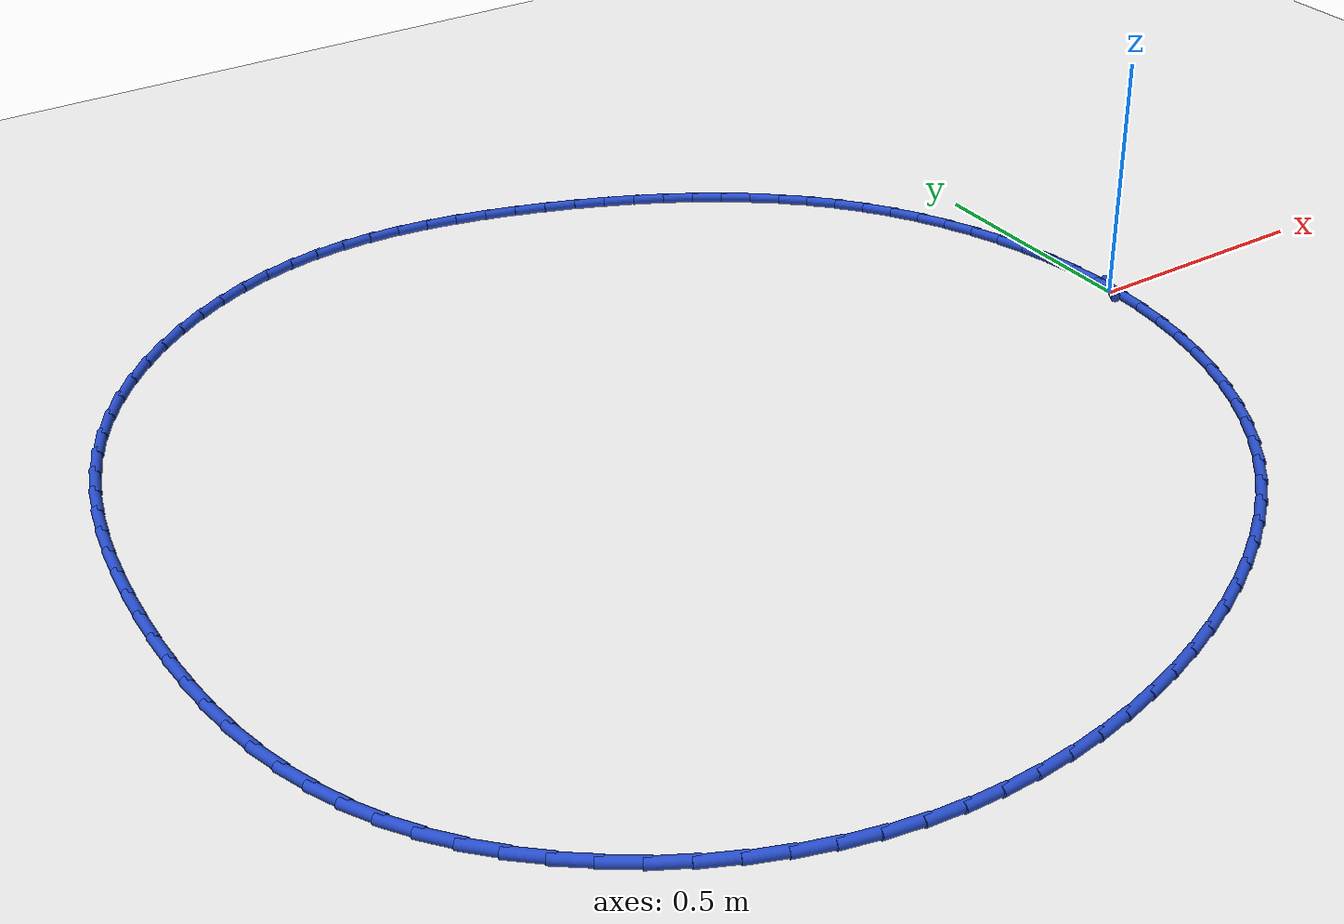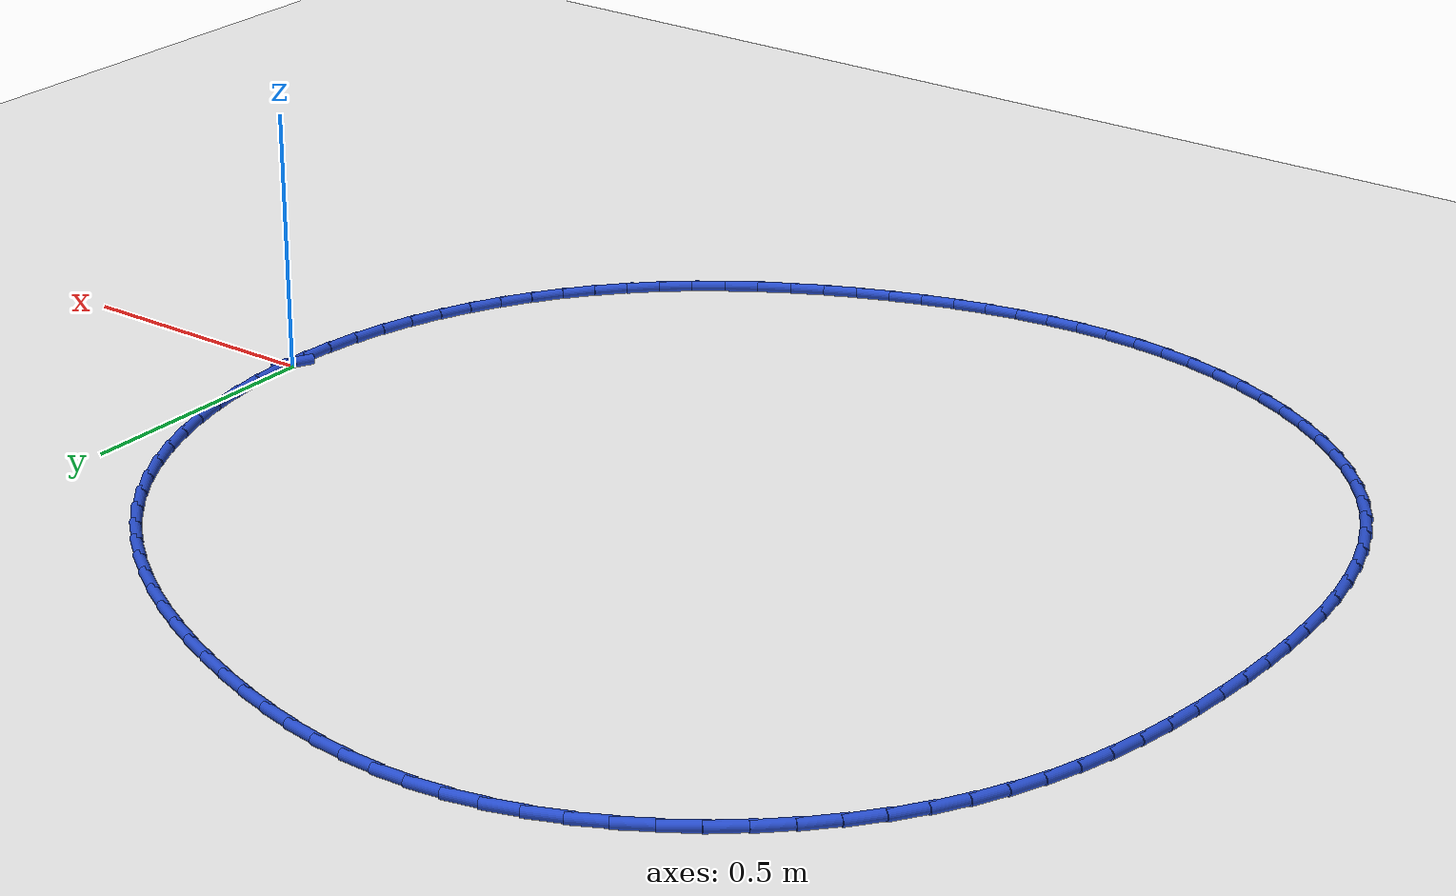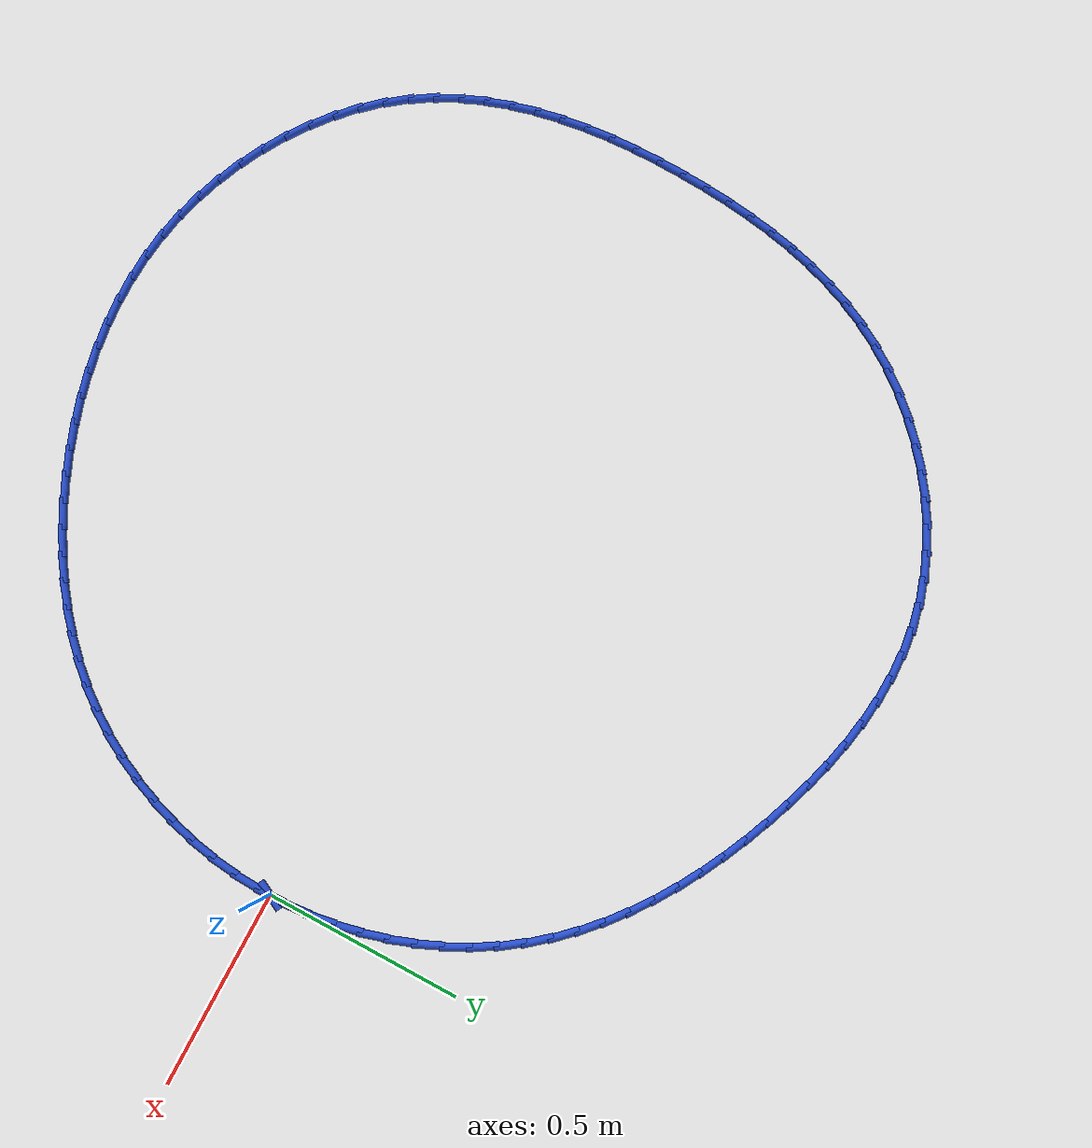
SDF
<sdf version="1.6">
 <world name="default">
  <light name="sun" type="directional">
   <pose>0 0 10 0 -0 0</pose>
   <diffuse>0.8 0.8 0.8 1</diffuse>
   <specular>0.2 0.2 0.2 1</specular>
   <attenuation>
    <range>1000</range>
    <constant>0.9</constant>
    <linear>0.01</linear>
    <quadratic>0.001</quadratic>
   </attenuation>
   <direction>-0.5 0.1 -0.9</direction>
  </light>
  <model name="ground_plane">
   <static>1</static>
   <link name="link">
    <collision name="collision">
     <geometry><plane><normal>0 0 1</normal><size>100 100</size></plane></geometry>
     <surface><friction><ode><mu>100</mu><mu2>50</mu2></ode></friction></surface>
    </collision>
    <visual name="visual">
     <cast_shadows>0</cast_shadows>
     <geometry><plane><normal>0 0 1</normal><size>100 100</size></plane></geometry>
     <material>
      <script><uri>file://media/materials/scripts/gazebo.material</uri><name>Gazebo/WhiteGlow</name></script>
     </material>
    </visual>
   </link>
  </model>
  <gravity>0 0 -9.8</gravity>
  <magnetic_field>6e-06 2.3e-05 -4.2e-05</magnetic_field>
  <atmosphere type="adiabatic"/>
  <physics name="default_physics" default="0" type="ode">
   <max_step_size>0.001</max_step_size>
   <real_time_factor>1</real_time_factor>
   <real_time_update_rate>1000</real_time_update_rate>
  </physics>
  <scene><ambient>0.4 0.4 0.4 1</ambient><background>0.7 0.7 0.7 1</background><shadows>1</shadows></scene>
  <spherical_coordinates>
   <surface_model>EARTH_WGS84</surface_model>
   <latitude_deg>0</latitude_deg>
   <longitude_deg>0</longitude_deg>
   <elevation>0</elevation>
   <heading_deg>0</heading_deg>
  </spherical_coordinates>
  <model name="line">
   <link name="link_0">
    <pose>5.204170427930421e-17 1.3877787807814457e-17 0.01 0 1.57 -1.5369575395635646</pose>
    <collision name="collision">
     <geometry><cylinder><radius>0.01</radius><length>0.08</length></cylinder></geometry>
    </collision>
    <visual name="visual">
     <material>
      <script><name>Gazebo/Blue</name><uri>file://media/materials/scripts/gazebo.material</uri></script>
     </material>
     <geometry><cylinder><radius>0.01</radius><length>0.08</length></cylinder></geometry>
    </visual>
   </link>
   <link name="link_1">
    <pose>-0.0022400724827493705 0.06617309875016318 0.01 0 1.57 -1.4712965018616015</pose>
    <collision name="collision">
     <geometry><cylinder><radius>0.01</radius><length>0.08</length></cylinder></geometry>
    </collision>
    <visual name="visual">
     <material>
      <script><name>Gazebo/Blue</name><uri>file://media/materials/scripts/gazebo.material</uri></script>
     </material>
     <geometry><cylinder><radius>0.01</radius><length>0.08</length></cylinder></geometry>
    </visual>
   </link>
   <link name="link_2">
    <pose>-0.008816758125148778 0.1320522877268923 0.01 0 1.57 -1.4063200440702284</pose>
    <collision name="collision">
     <geometry><cylinder><radius>0.01</radius><length>0.08</length></cylinder></geometry>
    </collision>
    <visual name="visual">
     <material>
      <script><name>Gazebo/Blue</name><uri>file://media/materials/scripts/gazebo.material</uri></script>
     </material>
     <geometry><cylinder><radius>0.01</radius><length>0.08</length></cylinder></geometry>
    </visual>
   </link>
   <link name="link_3">
    <pose>-0.019648317991479605 0.19731221261074494 0.01 0 1.57 -1.3415969769158416</pose>
    <collision name="collision">
     <geometry><cylinder><radius>0.01</radius><length>0.08</length></cylinder></geometry>
    </collision>
    <visual name="visual">
     <material>
      <script><name>Gazebo/Blue</name><uri>file://media/materials/scripts/gazebo.material</uri></script>
     </material>
     <geometry><cylinder><radius>0.01</radius><length>0.08</length></cylinder></geometry>
    </visual>
   </link>
   <link name="link_4">
    <pose>-0.034653013146023336 0.26162751908227927 0.01 0 1.57 -1.2766860509275353</pose>
    <collision name="collision">
     <geometry><cylinder><radius>0.01</radius><length>0.08</length></cylinder></geometry>
    </collision>
    <visual name="visual">
     <material>
      <script><name>Gazebo/Blue</name><uri>file://media/materials/scripts/gazebo.material</uri></script>
     </material>
     <geometry><cylinder><radius>0.01</radius><length>0.08</length></cylinder></geometry>
    </visual>
   </link>
   <link name="link_5">
    <pose>-0.053749104653061465 0.324672852822053 0.01 0 1.57 -1.2111414420504703</pose>
    <collision name="collision">
     <geometry><cylinder><radius>0.01</radius><length>0.08</length></cylinder></geometry>
    </collision>
    <visual name="visual">
     <material>
      <script><name>Gazebo/Blue</name><uri>file://media/materials/scripts/gazebo.material</uri></script>
     </material>
     <geometry><cylinder><radius>0.01</radius><length>0.08</length></cylinder></geometry>
    </visual>
   </link>
   <link name="link_6">
    <pose>-0.07685485357687541 0.3861228595106239 0.01 0 1.57 -1.1445185656957613</pose>
    <collision name="collision">
     <geometry><cylinder><radius>0.01</radius><length>0.08</length></cylinder></geometry>
    </collision>
    <visual name="visual">
     <material>
      <script><name>Gazebo/Blue</name><uri>file://media/materials/scripts/gazebo.material</uri></script>
     </material>
     <geometry><cylinder><radius>0.01</radius><length>0.08</length></cylinder></geometry>
    </visual>
   </link>
   <link name="link_7">
    <pose>-0.10388852098174672 0.4456521848285501 0.01 0 1.57 -1.0763814324998242</pose>
    <collision name="collision">
     <geometry><cylinder><radius>0.01</radius><length>0.08</length></cylinder></geometry>
    </collision>
    <visual name="visual">
     <material>
      <script><name>Gazebo/Blue</name><uri>file://media/materials/scripts/gazebo.material</uri></script>
     </material>
     <geometry><cylinder><radius>0.01</radius><length>0.08</length></cylinder></geometry>
    </visual>
   </link>
   <link name="link_8">
    <pose>-0.13476836793195676 0.5029354744563892 0.01 0 1.57 -1.0063128028804083</pose>
    <collision name="collision">
     <geometry><cylinder><radius>0.01</radius><length>0.08</length></cylinder></geometry>
    </collision>
    <visual name="visual">
     <material>
      <script><name>Gazebo/Blue</name><uri>file://media/materials/scripts/gazebo.material</uri></script>
     </material>
     <geometry><cylinder><radius>0.01</radius><length>0.08</length></cylinder></geometry>
    </visual>
   </link>
   <link name="link_9">
    <pose>-0.16941265549178702 0.5576473740746991 0.01 0 1.57 -0.9340053050203576</pose>
    <collision name="collision">
     <geometry><cylinder><radius>0.01</radius><length>0.08</length></cylinder></geometry>
    </collision>
    <visual name="visual">
     <material>
      <script><name>Gazebo/Blue</name><uri>file://media/materials/scripts/gazebo.material</uri></script>
     </material>
     <geometry><cylinder><radius>0.01</radius><length>0.08</length></cylinder></geometry>
    </visual>
   </link>
   <link name="link_10">
    <pose>-0.20773736302205653 0.6094677829932282 0.01 0 1.57 -0.861832837167358</pose>
    <collision name="collision">
     <geometry><cylinder><radius>0.01</radius><length>0.08</length></cylinder></geometry>
    </collision>
    <visual name="visual">
     <material>
      <script><name>Gazebo/Blue</name><uri>file://media/materials/scripts/gazebo.material</uri></script>
     </material>
     <geometry><cylinder><radius>0.01</radius><length>0.08</length></cylinder></geometry>
    </visual>
   </link>
   <link name="link_11">
    <pose>-0.24958184155715032 0.6582530374773349 0.01 0 1.57 -0.793208389301678</pose>
    <collision name="collision">
     <geometry><cylinder><radius>0.01</radius><length>0.08</length></cylinder></geometry>
    </collision>
    <visual name="visual">
     <material>
      <script><name>Gazebo/Blue</name><uri>file://media/materials/scripts/gazebo.material</uri></script>
     </material>
     <geometry><cylinder><radius>0.01</radius><length>0.08</length></cylinder></geometry>
    </visual>
   </link>
   <link name="link_12">
    <pose>-0.2946923695709845 0.7040737736470699 0.01 0 1.57 -0.728599602001141</pose>
    <collision name="collision">
     <geometry><cylinder><radius>0.01</radius><length>0.08</length></cylinder></geometry>
    </collision>
    <visual name="visual">
     <material>
      <script><name>Gazebo/Blue</name><uri>file://media/materials/scripts/gazebo.material</uri></script>
     </material>
     <geometry><cylinder><radius>0.01</radius><length>0.08</length></cylinder></geometry>
    </visual>
   </link>
   <link name="link_13">
    <pose>-0.34280961597097115 0.7470135436664904 0.01 0 1.57 -0.6681206396955378</pose>
    <collision name="collision">
     <geometry><cylinder><radius>0.01</radius><length>0.08</length></cylinder></geometry>
    </collision>
    <visual name="visual">
     <material>
      <script><name>Gazebo/Blue</name><uri>file://media/materials/scripts/gazebo.material</uri></script>
     </material>
     <geometry><cylinder><radius>0.01</radius><length>0.08</length></cylinder></geometry>
    </visual>
   </link>
   <link name="link_14">
    <pose>-0.3936742496645222 0.7871558996996534 0.01 0 1.57 -0.6117518418513347</pose>
    <collision name="collision">
     <geometry><cylinder><radius>0.01</radius><length>0.08</length></cylinder></geometry>
    </collision>
    <visual name="visual">
     <material>
      <script><name>Gazebo/Blue</name><uri>file://media/materials/scripts/gazebo.material</uri></script>
     </material>
     <geometry><cylinder><radius>0.01</radius><length>0.08</length></cylinder></geometry>
    </visual>
   </link>
   <link name="link_15">
    <pose>-0.4470269395590492 0.8245843939106154 0.01 0 1.57 -0.5593726238561654</pose>
    <collision name="collision">
     <geometry><cylinder><radius>0.01</radius><length>0.08</length></cylinder></geometry>
    </collision>
    <visual name="visual">
     <material>
      <script><name>Gazebo/Blue</name><uri>file://media/materials/scripts/gazebo.material</uri></script>
     </material>
     <geometry><cylinder><radius>0.01</radius><length>0.08</length></cylinder></geometry>
    </visual>
   </link>
   <link name="link_16">
    <pose>-0.5026083545619644 0.8593825784634331 0.01 0 1.57 -0.5107921642512886</pose>
    <collision name="collision">
     <geometry><cylinder><radius>0.01</radius><length>0.08</length></cylinder></geometry>
    </collision>
    <visual name="visual">
     <material>
      <script><name>Gazebo/Blue</name><uri>file://media/materials/scripts/gazebo.material</uri></script>
     </material>
     <geometry><cylinder><radius>0.01</radius><length>0.08</length></cylinder></geometry>
    </visual>
   </link>
   <link name="link_17">
    <pose>-0.5601591635806794 0.8916340055221637 0.01 0 1.57 -0.46577538940939395</pose>
    <collision name="collision">
     <geometry><cylinder><radius>0.01</radius><length>0.08</length></cylinder></geometry>
    </collision>
    <visual name="visual">
     <material>
      <script><name>Gazebo/Blue</name><uri>file://media/materials/scripts/gazebo.material</uri></script>
     </material>
     <geometry><cylinder><radius>0.01</radius><length>0.08</length></cylinder></geometry>
    </visual>
   </link>
   <link name="link_18">
    <pose>-0.6194200355226063 0.9214222272508639 0.01 0 1.57 -0.42406340338795795</pose>
    <collision name="collision">
     <geometry><cylinder><radius>0.01</radius><length>0.08</length></cylinder></geometry>
    </collision>
    <visual name="visual">
     <material>
      <script><name>Gazebo/Blue</name><uri>file://media/materials/scripts/gazebo.material</uri></script>
     </material>
     <geometry><cylinder><radius>0.01</radius><length>0.08</length></cylinder></geometry>
    </visual>
   </link>
   <link name="link_19">
    <pose>-0.680131639295157 0.9488307958135903 0.01 0 1.57 -0.3853885560056469</pose>
    <collision name="collision">
     <geometry><cylinder><radius>0.01</radius><length>0.08</length></cylinder></geometry>
    </collision>
    <visual name="visual">
     <material>
      <script><name>Gazebo/Blue</name><uri>file://media/materials/scripts/gazebo.material</uri></script>
     </material>
     <geometry><cylinder><radius>0.01</radius><length>0.08</length></cylinder></geometry>
    </visual>
   </link>
   <link name="link_20">
    <pose>-0.7420346438057431 0.9739432633744 0.01 0 1.57 -0.3490487990760355</pose>
    <collision name="collision">
     <geometry><cylinder><radius>0.01</radius><length>0.08</length></cylinder></geometry>
    </collision>
    <visual name="visual">
     <material>
      <script><name>Gazebo/Blue</name><uri>file://media/materials/scripts/gazebo.material</uri></script>
     </material>
     <geometry><cylinder><radius>0.01</radius><length>0.08</length></cylinder></geometry>
    </visual>
   </link>
   <link name="link_21">
    <pose>-0.804874273314703 0.9968138046106104 0.01 0 1.57 -0.31027707430056567</pose>
    <collision name="collision">
     <geometry><cylinder><radius>0.01</radius><length>0.08</length></cylinder></geometry>
    </collision>
    <visual name="visual">
     <material>
      <script><name>Gazebo/Blue</name><uri>file://media/materials/scripts/gazebo.material</uri></script>
     </material>
     <geometry><cylinder><radius>0.01</radius><length>0.08</length></cylinder></geometry>
    </visual>
   </link>
   <link name="link_22">
    <pose>-0.8684423875164031 1.0171958421245717 0.01 0 1.57 -0.2660277157955</pose>
    <collision name="collision">
     <geometry><cylinder><radius>0.01</radius><length>0.08</length></cylinder></geometry>
    </collision>
    <visual name="visual">
     <material>
      <script><name>Gazebo/Blue</name><uri>file://media/materials/scripts/gazebo.material</uri></script>
     </material>
     <geometry><cylinder><radius>0.01</radius><length>0.08</length></cylinder></geometry>
    </visual>
   </link>
   <link name="link_23">
    <pose>-0.9325581810396824 1.0346665154319015 0.01 0 1.57 -0.21578026570159456</pose>
    <collision name="collision">
     <geometry><cylinder><radius>0.01</radius><length>0.08</length></cylinder></geometry>
    </collision>
    <visual name="visual">
     <material>
      <script><name>Gazebo/Blue</name><uri>file://media/materials/scripts/gazebo.material</uri></script>
     </material>
     <geometry><cylinder><radius>0.01</radius><length>0.08</length></cylinder></geometry>
    </visual>
   </link>
   <link name="link_24">
    <pose>-0.9970411949959835 1.048800729580714 0.01 0 1.57 -0.1590396461338647</pose>
    <collision name="collision">
     <geometry><cylinder><radius>0.01</radius><length>0.08</length></cylinder></geometry>
    </collision>
    <visual name="visual">
     <material>
      <script><name>Gazebo/Blue</name><uri>file://media/materials/scripts/gazebo.material</uri></script>
     </material>
     <geometry><cylinder><radius>0.01</radius><length>0.08</length></cylinder></geometry>
    </visual>
   </link>
   <link name="link_25">
    <pose>-1.0617109704967485 1.0591733896191224 0.01 0 1.57 -0.09535597193379584</pose>
    <collision name="collision">
     <geometry><cylinder><radius>0.01</radius><length>0.08</length></cylinder></geometry>
    </collision>
    <visual name="visual">
     <material>
      <script><name>Gazebo/Blue</name><uri>file://media/materials/scripts/gazebo.material</uri></script>
     </material>
     <geometry><cylinder><radius>0.01</radius><length>0.08</length></cylinder></geometry>
    </visual>
   </link>
   <link name="link_26">
    <pose>-1.1263870486534193 1.0653594005952414 0.01 0 1.57 -0.02440166806422992</pose>
    <collision name="collision">
     <geometry><cylinder><radius>0.01</radius><length>0.08</length></cylinder></geometry>
    </collision>
    <visual name="visual">
     <material>
      <script><name>Gazebo/Blue</name><uri>file://media/materials/scripts/gazebo.material</uri></script>
     </material>
     <geometry><cylinder><radius>0.01</radius><length>0.08</length></cylinder></geometry>
    </visual>
   </link>
   <link name="link_27">
    <pose>-1.1908889705774386 1.0669336675571839 0.01 0 1.57 0.0539261133401067</pose>
    <collision name="collision">
     <geometry><cylinder><radius>0.01</radius><length>0.08</length></cylinder></geometry>
    </collision>
    <visual name="visual">
     <material>
      <script><name>Gazebo/Blue</name><uri>file://media/materials/scripts/gazebo.material</uri></script>
     </material>
     <geometry><cylinder><radius>0.01</radius><length>0.08</length></cylinder></geometry>
    </visual>
   </link>
   <link name="link_28">
    <pose>-1.2550362773802486 1.0634710955530644 0.01 0 1.57 0.13938568629382697</pose>
    <collision name="collision">
     <geometry><cylinder><radius>0.01</radius><length>0.08</length></cylinder></geometry>
    </collision>
    <visual name="visual">
     <material>
      <script><name>Gazebo/Blue</name><uri>file://media/materials/scripts/gazebo.material</uri></script>
     </material>
     <geometry><cylinder><radius>0.01</radius><length>0.08</length></cylinder></geometry>
    </visual>
   </link>
   <link name="link_29">
    <pose>-1.3186485101732908 1.0545465896309962 0.01 0 1.57 0.23065059173175673</pose>
    <collision name="collision">
     <geometry><cylinder><radius>0.01</radius><length>0.08</length></cylinder></geometry>
    </collision>
    <visual name="visual">
     <material>
      <script><name>Gazebo/Blue</name><uri>file://media/materials/scripts/gazebo.material</uri></script>
     </material>
     <geometry><cylinder><radius>0.01</radius><length>0.08</length></cylinder></geometry>
    </visual>
   </link>
   <link name="link_30">
    <pose>-1.3815346253669774 1.0397790604182924 0.01 0 1.57 0.3202860237920319</pose>
    <collision name="collision">
     <geometry><cylinder><radius>0.01</radius><length>0.08</length></cylinder></geometry>
    </collision>
    <visual name="visual">
     <material>
      <script><name>Gazebo/Blue</name><uri>file://media/materials/scripts/gazebo.material</uri></script>
     </material>
     <geometry><cylinder><radius>0.01</radius><length>0.08</length></cylinder></geometry>
    </visual>
   </link>
   <link name="link_31">
    <pose>-1.4433895853603773 1.0192613452483115 0.01 0 1.57 0.4046042955244832</pose>
    <collision name="collision">
     <geometry><cylinder><radius>0.01</radius><length>0.08</length></cylinder></geometry>
    </collision>
    <visual name="visual">
     <material>
      <script><name>Gazebo/Blue</name><uri>file://media/materials/scripts/gazebo.material</uri></script>
     </material>
     <geometry><cylinder><radius>0.01</radius><length>0.08</length></cylinder></geometry>
    </visual>
   </link>
   <link name="link_32">
    <pose>-1.5038388903943862 0.9933750683076049 0.01 0 1.57 0.4843595154985912</pose>
    <collision name="collision">
     <geometry><cylinder><radius>0.01</radius><length>0.08</length></cylinder></geometry>
    </collision>
    <visual name="visual">
     <material>
      <script><name>Gazebo/Blue</name><uri>file://media/materials/scripts/gazebo.material</uri></script>
     </material>
     <geometry><cylinder><radius>0.01</radius><length>0.08</length></cylinder></geometry>
    </visual>
   </link>
   <link name="link_33">
    <pose>-1.5625070533334058 0.9625059587710811 0.01 0 1.57 0.5604613908315871</pose>
    <collision name="collision">
     <geometry><cylinder><radius>0.01</radius><length>0.08</length></cylinder></geometry>
    </collision>
    <visual name="visual">
     <material>
      <script><name>Gazebo/Blue</name><uri>file://media/materials/scripts/gazebo.material</uri></script>
     </material>
     <geometry><cylinder><radius>0.01</radius><length>0.08</length></cylinder></geometry>
    </visual>
   </link>
   <link name="link_34">
    <pose>-1.6190185870418394 0.9270397458136491 0.01 0 1.57 0.6338644491747427</pose>
    <collision name="collision">
     <geometry><cylinder><radius>0.01</radius><length>0.08</length></cylinder></geometry>
    </collision>
    <visual name="visual">
     <material>
      <script><name>Gazebo/Blue</name><uri>file://media/materials/scripts/gazebo.material</uri></script>
     </material>
     <geometry><cylinder><radius>0.01</radius><length>0.08</length></cylinder></geometry>
    </visual>
   </link>
   <link name="link_35">
    <pose>-1.6729980043840875 0.8873621586102176 0.01 0 1.57 0.7055410936096008</pose>
    <collision name="collision">
     <geometry><cylinder><radius>0.01</radius><length>0.08</length></cylinder></geometry>
    </collision>
    <visual name="visual">
     <material>
      <script><name>Gazebo/Blue</name><uri>file://media/materials/scripts/gazebo.material</uri></script>
     </material>
     <geometry><cylinder><radius>0.01</radius><length>0.08</length></cylinder></geometry>
    </visual>
   </link>
   <link name="link_36">
    <pose>-1.7240698182245526 0.8438589263356948 0.01 0 1.57 0.7764724178733229</pose>
    <collision name="collision">
     <geometry><cylinder><radius>0.01</radius><length>0.08</length></cylinder></geometry>
    </collision>
    <visual name="visual">
     <material>
      <script><name>Gazebo/Blue</name><uri>file://media/materials/scripts/gazebo.material</uri></script>
     </material>
     <geometry><cylinder><radius>0.01</radius><length>0.08</length></cylinder></geometry>
    </visual>
   </link>
   <link name="link_37">
    <pose>-1.7718585414276373 0.7969157781649896 0.01 0 1.57 0.847649999531456</pose>
    <collision name="collision">
     <geometry><cylinder><radius>0.01</radius><length>0.08</length></cylinder></geometry>
    </collision>
    <visual name="visual">
     <material>
      <script><name>Gazebo/Blue</name><uri>file://media/materials/scripts/gazebo.material</uri></script>
     </material>
     <geometry><cylinder><radius>0.01</radius><length>0.08</length></cylinder></geometry>
    </visual>
   </link>
   <link name="link_38">
    <pose>-1.8159886868577428 0.7469184432730106 0.01 0 1.57 0.9200829708182874</pose>
    <collision name="collision">
     <geometry><cylinder><radius>0.01</radius><length>0.08</length></cylinder></geometry>
    </collision>
    <visual name="visual">
     <material>
      <script><name>Gazebo/Blue</name><uri>file://media/materials/scripts/gazebo.material</uri></script>
     </material>
     <geometry><cylinder><radius>0.01</radius><length>0.08</length></cylinder></geometry>
    </visual>
   </link>
   <link name="link_39">
    <pose>-1.8560847673792717 0.6942526508346667 0.01 0 1.57 0.9948040945632614</pose>
    <collision name="collision">
     <geometry><cylinder><radius>0.01</radius><length>0.08</length></cylinder></geometry>
    </collision>
    <visual name="visual">
     <material>
      <script><name>Gazebo/Blue</name><uri>file://media/materials/scripts/gazebo.material</uri></script>
     </material>
     <geometry><cylinder><radius>0.01</radius><length>0.08</length></cylinder></geometry>
    </visual>
   </link>
   <link name="link_40">
    <pose>-1.8917713992918317 0.6393040962380407 0.01 0 1.57 1.0711808157927891</pose>
    <collision name="collision">
     <geometry><cylinder><radius>0.01</radius><length>0.08</length></cylinder></geometry>
    </collision>
    <visual name="visual">
     <material>
      <script><name>Gazebo/Blue</name><uri>file://media/materials/scripts/gazebo.material</uri></script>
     </material>
     <geometry><cylinder><radius>0.01</radius><length>0.08</length></cylinder></geometry>
    </visual>
   </link>
   <link name="link_41">
    <pose>-1.922824992831944 0.5824088917993424 0.01 0 1.57 1.1442876319496846</pose>
    <collision name="collision">
     <geometry><cylinder><radius>0.01</radius><length>0.08</length></cylinder></geometry>
    </collision>
    <visual name="visual">
     <material>
      <script><name>Gazebo/Blue</name><uri>file://media/materials/scripts/gazebo.material</uri></script>
     </material>
     <geometry><cylinder><radius>0.01</radius><length>0.08</length></cylinder></geometry>
    </visual>
   </link>
   <link name="link_42">
    <pose>-1.9494777837687112 0.5237542556786409 0.01 0 1.57 1.2124050946384042</pose>
    <collision name="collision">
     <geometry><cylinder><radius>0.01</radius><length>0.08</length></cylinder></geometry>
    </collision>
    <visual name="visual">
     <material>
      <script><name>Gazebo/Blue</name><uri>file://media/materials/scripts/gazebo.material</uri></script>
     </material>
     <geometry><cylinder><radius>0.01</radius><length>0.08</length></cylinder></geometry>
    </visual>
   </link>
   <link name="link_43">
    <pose>-1.97204721537007 0.46349957324093444 0.01 0 1.57 1.2749598707981773</pose>
    <collision name="collision">
     <geometry><cylinder><radius>0.01</radius><length>0.08</length></cylinder></geometry>
    </collision>
    <visual name="visual">
     <material>
      <script><name>Gazebo/Blue</name><uri>file://media/materials/scripts/gazebo.material</uri></script>
     </material>
     <geometry><cylinder><radius>0.01</radius><length>0.08</length></cylinder></geometry>
    </visual>
   </link>
   <link name="link_44">
    <pose>-1.9908507309039583 0.4018042298512228 0.01 0 1.57 1.3316412871052608</pose>
    <collision name="collision">
     <geometry><cylinder><radius>0.01</radius><length>0.08</length></cylinder></geometry>
    </collision>
    <visual name="visual">
     <material>
      <script><name>Gazebo/Blue</name><uri>file://media/materials/scripts/gazebo.material</uri></script>
     </material>
     <geometry><cylinder><radius>0.01</radius><length>0.08</length></cylinder></geometry>
    </visual>
   </link>
   <link name="link_45">
    <pose>-2.0062057736383125 0.3388276108745053 0.01 0 1.57 1.3823524212762157</pose>
    <collision name="collision">
     <geometry><cylinder><radius>0.01</radius><length>0.08</length></cylinder></geometry>
    </collision>
    <visual name="visual">
     <material>
      <script><name>Gazebo/Blue</name><uri>file://media/materials/scripts/gazebo.material</uri></script>
     </material>
     <geometry><cylinder><radius>0.01</radius><length>0.08</length></cylinder></geometry>
    </visual>
   </link>
   <link name="link_46">
    <pose>-2.0184297868410703 0.27472910167578163 0.01 0 1.57 1.4271524818653858</pose>
    <collision name="collision">
     <geometry><cylinder><radius>0.01</radius><length>0.08</length></cylinder></geometry>
    </collision>
    <visual name="visual">
     <material>
      <script><name>Gazebo/Blue</name><uri>file://media/materials/scripts/gazebo.material</uri></script>
     </material>
     <geometry><cylinder><radius>0.01</radius><length>0.08</length></cylinder></geometry>
    </visual>
   </link>
   <link name="link_47">
    <pose>-2.0278402137801685 0.20966808762005043 0.01 0 1.57 1.466201445348501</pose>
    <collision name="collision">
     <geometry><cylinder><radius>0.01</radius><length>0.08</length></cylinder></geometry>
    </collision>
    <visual name="visual">
     <material>
      <script><name>Gazebo/Blue</name><uri>file://media/materials/scripts/gazebo.material</uri></script>
     </material>
     <geometry><cylinder><radius>0.01</radius><length>0.08</length></cylinder></geometry>
    </visual>
   </link>
   <link name="link_48">
    <pose>-2.0347544977235428 0.1438039540723116 0.01 0 1.57 1.4997129252776205</pose>
    <collision name="collision">
     <geometry><cylinder><radius>0.01</radius><length>0.08</length></cylinder></geometry>
    </collision>
    <visual name="visual">
     <material>
      <script><name>Gazebo/Blue</name><uri>file://media/materials/scripts/gazebo.material</uri></script>
     </material>
     <geometry><cylinder><radius>0.01</radius><length>0.08</length></cylinder></geometry>
    </visual>
   </link>
   <link name="link_49">
    <pose>-2.0394900819391317 0.07729608639756395 0.01 0 1.57 1.529176422589791</pose>
    <collision name="collision">
     <geometry><cylinder><radius>0.01</radius><length>0.08</length></cylinder></geometry>
    </collision>
    <visual name="visual">
     <material>
      <script><name>Gazebo/Blue</name><uri>file://media/materials/scripts/gazebo.material</uri></script>
     </material>
     <geometry><cylinder><radius>0.01</radius><length>0.08</length></cylinder></geometry>
    </visual>
   </link>
   <link name="link_50">
    <pose>-2.0422791401230307 0.010322179713580818 0.01 0 1.57 1.5606805440389178</pose>
    <collision name="collision">
     <geometry><cylinder><radius>0.01</radius><length>0.08</length></cylinder></geometry>
    </collision>
    <visual name="visual">
     <material>
      <script><name>Gazebo/Blue</name><uri>file://media/materials/scripts/gazebo.material</uri></script>
     </material>
     <geometry><cylinder><radius>0.01</radius><length>0.08</length></cylinder></geometry>
    </visual>
   </link>
   <link name="link_51">
    <pose>-2.0429587153385778 -0.05685522530625803 0.01 0 1.57 -1.5453563128034968</pose>
    <collision name="collision">
     <geometry><cylinder><radius>0.01</radius><length>0.08</length></cylinder></geometry>
    </collision>
    <visual name="visual">
     <material>
      <script><name>Gazebo/Blue</name><uri>file://media/materials/scripts/gazebo.material</uri></script>
     </material>
     <geometry><cylinder><radius>0.01</radius><length>0.08</length></cylinder></geometry>
    </visual>
   </link>
   <link name="link_52">
    <pose>-2.041251479704419 -0.12394902936025294 0.01 0 1.57 -1.505374492301243</pose>
    <collision name="collision">
     <geometry><cylinder><radius>0.01</radius><length>0.08</length></cylinder></geometry>
    </collision>
    <visual name="visual">
     <material>
      <script><name>Gazebo/Blue</name><uri>file://media/materials/scripts/gazebo.material</uri></script>
     </material>
     <geometry><cylinder><radius>0.01</radius><length>0.08</length></cylinder></geometry>
    </visual>
   </link>
   <link name="link_53">
    <pose>-2.03688009370024 -0.1906721306474957 0.01 0 1.57 -1.4605534824747792</pose>
    <collision name="collision">
     <geometry><cylinder><radius>0.01</radius><length>0.08</length></cylinder></geometry>
    </collision>
    <visual name="visual">
     <material>
      <script><name>Gazebo/Blue</name><uri>file://media/materials/scripts/gazebo.material</uri></script>
     </material>
     <geometry><cylinder><radius>0.01</radius><length>0.08</length></cylinder></geometry>
    </visual>
   </link>
   <link name="link_54">
    <pose>-2.0295672178057274 -0.25673742736707783 0.01 0 1.57 -1.4104579276698463</pose>
    <collision name="collision">
     <geometry><cylinder><radius>0.01</radius><length>0.08</length></cylinder></geometry>
    </collision>
    <visual name="visual">
     <material>
      <script><name>Gazebo/Blue</name><uri>file://media/materials/scripts/gazebo.material</uri></script>
     </material>
     <geometry><cylinder><radius>0.01</radius><length>0.08</length></cylinder></geometry>
    </visual>
   </link>
   <link name="link_55">
    <pose>-2.0190355125005683 -0.3218578177180912 0.01 0 1.57 -1.3546576685841825</pose>
    <collision name="collision">
     <geometry><cylinder><radius>0.01</radius><length>0.08</length></cylinder></geometry>
    </collision>
    <visual name="visual">
     <material>
      <script><name>Gazebo/Blue</name><uri>file://media/materials/scripts/gazebo.material</uri></script>
     </material>
     <geometry><cylinder><radius>0.01</radius><length>0.08</length></cylinder></geometry>
    </visual>
   </link>
   <link name="link_56">
    <pose>-2.0050076382644497 -0.3857461998996272 0.01 0 1.57 -1.2927695796324938</pose>
    <collision name="collision">
     <geometry><cylinder><radius>0.01</radius><length>0.08</length></cylinder></geometry>
    </collision>
    <visual name="visual">
     <material>
      <script><name>Gazebo/Blue</name><uri>file://media/materials/scripts/gazebo.material</uri></script>
     </material>
     <geometry><cylinder><radius>0.01</radius><length>0.08</length></cylinder></geometry>
    </visual>
   </link>
   <link name="link_57">
    <pose>-1.9872062555770575 -0.44811547211077785 0.01 0 1.57 -1.2245169556126303</pose>
    <collision name="collision">
     <geometry><cylinder><radius>0.01</radius><length>0.08</length></cylinder></geometry>
    </collision>
    <visual name="visual">
     <material>
      <script><name>Gazebo/Blue</name><uri>file://media/materials/scripts/gazebo.material</uri></script>
     </material>
     <geometry><cylinder><radius>0.01</radius><length>0.08</length></cylinder></geometry>
    </visual>
   </link>
   <link name="link_58">
    <pose>-1.9653540249180785 -0.5086785325506338 0.01 0 1.57 -1.1498066859952518</pose>
    <collision name="collision">
     <geometry><cylinder><radius>0.01</radius><length>0.08</length></cylinder></geometry>
    </collision>
    <visual name="visual">
     <material>
      <script><name>Gazebo/Blue</name><uri>file://media/materials/scripts/gazebo.material</uri></script>
     </material>
     <geometry><cylinder><radius>0.01</radius><length>0.08</length></cylinder></geometry>
    </visual>
   </link>
   <link name="link_59">
    <pose>-1.9391736067672 -0.5671482794182884 0.01 0 1.57 -1.0688184371141705</pose>
    <collision name="collision">
     <geometry><cylinder><radius>0.01</radius><length>0.08</length></cylinder></geometry>
    </collision>
    <visual name="visual">
     <material>
      <script><name>Gazebo/Blue</name><uri>file://media/materials/scripts/gazebo.material</uri></script>
     </material>
     <geometry><cylinder><radius>0.01</radius><length>0.08</length></cylinder></geometry>
    </visual>
   </link>
   <link name="link_60">
    <pose>-1.9083876616041064 -0.6232376109128321 0.01 0 1.57 -0.9822518925370746</pose>
    <collision name="collision">
     <geometry><cylinder><radius>0.01</radius><length>0.08</length></cylinder></geometry>
    </collision>
    <visual name="visual">
     <material>
      <script><name>Gazebo/Blue</name><uri>file://media/materials/scripts/gazebo.material</uri></script>
     </material>
     <geometry><cylinder><radius>0.01</radius><length>0.08</length></cylinder></geometry>
    </visual>
   </link>
   <link name="link_61">
    <pose>-1.872730246812635 -0.6766609931677902 0.01 0 1.57 -0.8953580562386207</pose>
    <collision name="collision">
     <geometry><cylinder><radius>0.01</radius><length>0.08</length></cylinder></geometry>
    </collision>
    <visual name="visual">
     <material>
      <script><name>Gazebo/Blue</name><uri>file://media/materials/scripts/gazebo.material</uri></script>
     </material>
     <geometry><cylinder><radius>0.01</radius><length>0.08</length></cylinder></geometry>
    </visual>
   </link>
   <link name="link_62">
    <pose>-1.8322592795584978 -0.7271774474780569 0.01 0 1.57 -0.8130690422851151</pose>
    <collision name="collision">
     <geometry><cylinder><radius>0.01</radius><length>0.08</length></cylinder></geometry>
    </collision>
    <visual name="visual">
     <material>
      <script><name>Gazebo/Blue</name><uri>file://media/materials/scripts/gazebo.material</uri></script>
     </material>
     <geometry><cylinder><radius>0.01</radius><length>0.08</length></cylinder></geometry>
    </visual>
   </link>
   <link name="link_63">
    <pose>-1.7873950686791955 -0.7745958513427211 0.01 0 1.57 -0.7350249459550338</pose>
    <collision name="collision">
     <geometry><cylinder><radius>0.01</radius><length>0.08</length></cylinder></geometry>
    </collision>
    <visual name="visual">
     <material>
      <script><name>Gazebo/Blue</name><uri>file://media/materials/scripts/gazebo.material</uri></script>
     </material>
     <geometry><cylinder><radius>0.01</radius><length>0.08</length></cylinder></geometry>
    </visual>
   </link>
   <link name="link_64">
    <pose>-1.738577056835838 -0.8187277146056281 0.01 0 1.57 -0.6604937982932608</pose>
    <collision name="collision">
     <geometry><cylinder><radius>0.01</radius><length>0.08</length></cylinder></geometry>
    </collision>
    <visual name="visual">
     <material>
      <script><name>Gazebo/Blue</name><uri>file://media/materials/scripts/gazebo.material</uri></script>
     </material>
     <geometry><cylinder><radius>0.01</radius><length>0.08</length></cylinder></geometry>
    </visual>
   </link>
   <link name="link_65">
    <pose>-1.6862446866895382 -0.8593845471106232 0.01 0 1.57 -0.588691018752655</pose>
    <collision name="collision">
     <geometry><cylinder><radius>0.01</radius><length>0.08</length></cylinder></geometry>
    </collision>
    <visual name="visual">
     <material>
      <script><name>Gazebo/Blue</name><uri>file://media/materials/scripts/gazebo.material</uri></script>
     </material>
     <geometry><cylinder><radius>0.01</radius><length>0.08</length></cylinder></geometry>
    </visual>
   </link>
   <link name="link_66">
    <pose>-1.6308374009014064 -0.8963778587015516 0.01 0 1.57 -0.5188084942715597</pose>
    <collision name="collision">
     <geometry><cylinder><radius>0.01</radius><length>0.08</length></cylinder></geometry>
    </collision>
    <visual name="visual">
     <material>
      <script><name>Gazebo/Blue</name><uri>file://media/materials/scripts/gazebo.material</uri></script>
     </material>
     <geometry><cylinder><radius>0.01</radius><length>0.08</length></cylinder></geometry>
    </visual>
   </link>
   <link name="link_67">
    <pose>-1.5727946421325547 -0.9295191592222587 0.01 0 1.57 -0.45002889894876513</pose>
    <collision name="collision">
     <geometry><cylinder><radius>0.01</radius><length>0.08</length></cylinder></geometry>
    </collision>
    <visual name="visual">
     <material>
      <script><name>Gazebo/Blue</name><uri>file://media/materials/scripts/gazebo.material</uri></script>
     </material>
     <geometry><cylinder><radius>0.01</radius><length>0.08</length></cylinder></geometry>
    </visual>
   </link>
   <link name="link_68">
    <pose>-1.5125558530440932 -0.9586199585165893 0.01 0 1.57 -0.3815301884794003</pose>
    <collision name="collision">
     <geometry><cylinder><radius>0.01</radius><length>0.08</length></cylinder></geometry>
    </collision>
    <visual name="visual">
     <material>
      <script><name>Gazebo/Blue</name><uri>file://media/materials/scripts/gazebo.material</uri></script>
     </material>
     <geometry><cylinder><radius>0.01</radius><length>0.08</length></cylinder></geometry>
    </visual>
   </link>
   <link name="link_69">
    <pose>-1.4505604762971342 -0.9834917664283892 0.01 0 1.57 -0.31248457548959696</pose>
    <collision name="collision">
     <geometry><cylinder><radius>0.01</radius><length>0.08</length></cylinder></geometry>
    </collision>
    <visual name="visual">
     <material>
      <script><name>Gazebo/Blue</name><uri>file://media/materials/scripts/gazebo.material</uri></script>
     </material>
     <geometry><cylinder><radius>0.01</radius><length>0.08</length></cylinder></geometry>
    </visual>
   </link>
   <link name="link_70">
    <pose>-1.387247954552789 -1.0039460928015034 0.01 0 1.57 -0.24205578690197976</pose>
    <collision name="collision">
     <geometry><cylinder><radius>0.01</radius><length>0.08</length></cylinder></geometry>
    </collision>
    <visual name="visual">
     <material>
      <script><name>Gazebo/Blue</name><uri>file://media/materials/scripts/gazebo.material</uri></script>
     </material>
     <geometry><cylinder><radius>0.01</radius><length>0.08</length></cylinder></geometry>
    </visual>
   </link>
   <link name="link_71">
    <pose>-1.3230577304721693 -1.0197944474797769 0.01 0 1.57 -0.17012295431296123</pose>
    <collision name="collision">
     <geometry><cylinder><radius>0.01</radius><length>0.08</length></cylinder></geometry>
    </collision>
    <visual name="visual">
     <material>
      <script><name>Gazebo/Blue</name><uri>file://media/materials/scripts/gazebo.material</uri></script>
     </material>
     <geometry><cylinder><radius>0.01</radius><length>0.08</length></cylinder></geometry>
    </visual>
   </link>
   <link name="link_72">
    <pose>-1.2583879931258024 -1.0309036349763165 0.01 0 1.57 -0.09968704311610284</pose>
    <collision name="collision">
     <geometry><cylinder><radius>0.01</radius><length>0.08</length></cylinder></geometry>
    </collision>
    <visual name="visual">
     <material>
      <script><name>Gazebo/Blue</name><uri>file://media/materials/scripts/gazebo.material</uri></script>
     </material>
     <geometry><cylinder><radius>0.01</radius><length>0.08</length></cylinder></geometry>
    </visual>
   </link>
   <link name="link_73">
    <pose>-1.1934438524744428 -1.0373992553506373 0.01 0 1.57 -0.0320054635332894</pose>
    <collision name="collision">
     <geometry><cylinder><radius>0.01</radius><length>0.08</length></cylinder></geometry>
    </collision>
    <visual name="visual">
     <material>
      <script><name>Gazebo/Blue</name><uri>file://media/materials/scripts/gazebo.material</uri></script>
     </material>
     <geometry><cylinder><radius>0.01</radius><length>0.08</length></cylinder></geometry>
    </visual>
   </link>
   <link name="link_74">
    <pose>-1.1283739787598195 -1.03948255821306 0.01 0 1.57 0.03269942021162264</pose>
    <collision name="collision">
     <geometry><cylinder><radius>0.01</radius><length>0.08</length></cylinder></geometry>
    </collision>
    <visual name="visual">
     <material>
      <script><name>Gazebo/Blue</name><uri>file://media/materials/scripts/gazebo.material</uri></script>
     </material>
     <geometry><cylinder><radius>0.01</radius><length>0.08</length></cylinder></geometry>
    </visual>
   </link>
   <link name="link_75">
    <pose>-1.0633270353013664 -1.0373548024522732 0.01 0 1.57 0.094324616120452</pose>
    <collision name="collision">
     <geometry><cylinder><radius>0.01</radius><length>0.08</length></cylinder></geometry>
    </collision>
    <visual name="visual">
     <material>
      <script><name>Gazebo/Blue</name><uri>file://media/materials/scripts/gazebo.material</uri></script>
     </material>
     <geometry><cylinder><radius>0.01</radius><length>0.08</length></cylinder></geometry>
    </visual>
   </link>
   <link name="link_76">
    <pose>-0.9984516854185169 -1.0312172469569665 0.01 0 1.57 0.15286940127056453</pose>
    <collision name="collision">
     <geometry><cylinder><radius>0.01</radius><length>0.08</length></cylinder></geometry>
    </collision>
    <visual name="visual">
     <material>
      <script><name>Gazebo/Blue</name><uri>file://media/materials/scripts/gazebo.material</uri></script>
     </material>
     <geometry><cylinder><radius>0.01</radius><length>0.08</length></cylinder></geometry>
    </visual>
   </link>
   <link name="link_77">
    <pose>-0.9338965924307049 -1.0212711506158285 0.01 0 1.57 0.20841574958062425</pose>
    <collision name="collision">
     <geometry><cylinder><radius>0.01</radius><length>0.08</length></cylinder></geometry>
    </collision>
    <visual name="visual">
     <material>
      <script><name>Gazebo/Blue</name><uri>file://media/materials/scripts/gazebo.material</uri></script>
     </material>
     <geometry><cylinder><radius>0.01</radius><length>0.08</length></cylinder></geometry>
    </visual>
   </link>
   <link name="link_78">
    <pose>-0.8698104196573643 -1.0077177723175488 0.01 0 1.57 0.26110899092222356</pose>
    <collision name="collision">
     <geometry><cylinder><radius>0.01</radius><length>0.08</length></cylinder></geometry>
    </collision>
    <visual name="visual">
     <material>
      <script><name>Gazebo/Blue</name><uri>file://media/materials/scripts/gazebo.material</uri></script>
     </material>
     <geometry><cylinder><radius>0.01</radius><length>0.08</length></cylinder></geometry>
    </visual>
   </link>
   <link name="link_79">
    <pose>-0.8063418304179287 -0.990758370950816 0.01 0 1.57 0.31114052813929205</pose>
    <collision name="collision">
     <geometry><cylinder><radius>0.01</radius><length>0.08</length></cylinder></geometry>
    </collision>
    <visual name="visual">
     <material>
      <script><name>Gazebo/Blue</name><uri>file://media/materials/scripts/gazebo.material</uri></script>
     </material>
     <geometry><cylinder><radius>0.01</radius><length>0.08</length></cylinder></geometry>
    </visual>
   </link>
   <link name="link_80">
    <pose>-0.7436394880318317 -0.9705942054043188 0.01 0 1.57 0.35873559264845944</pose>
    <collision name="collision">
     <geometry><cylinder><radius>0.01</radius><length>0.08</length></cylinder></geometry>
    </collision>
    <visual name="visual">
     <material>
      <script><name>Gazebo/Blue</name><uri>file://media/materials/scripts/gazebo.material</uri></script>
     </material>
     <geometry><cylinder><radius>0.01</radius><length>0.08</length></cylinder></geometry>
    </visual>
   </link>
   <link name="link_81">
    <pose>-0.6818521261906053 -0.9474264168191899 0.01 0 1.57 0.4050770137307088</pose>
    <collision name="collision">
     <geometry><cylinder><radius>0.01</radius><length>0.08</length></cylinder></geometry>
    </collision>
    <visual name="visual">
     <material>
      <script><name>Gazebo/Blue</name><uri>file://media/materials/scripts/gazebo.material</uri></script>
     </material>
     <geometry><cylinder><radius>0.01</radius><length>0.08</length></cylinder></geometry>
    </visual>
   </link>
   <link name="link_82">
    <pose>-0.6211605739349133 -0.9214024439593953 0.01 0 1.57 0.4528734658033722</pose>
    <collision name="collision">
     <geometry><cylinder><radius>0.01</radius><length>0.08</length></cylinder></geometry>
    </collision>
    <visual name="visual">
     <material>
      <script><name>Gazebo/Blue</name><uri>file://media/materials/scripts/gazebo.material</uri></script>
     </material>
     <geometry><cylinder><radius>0.01</radius><length>0.08</length></cylinder></geometry>
    </visual>
   </link>
   <link name="link_83">
    <pose>-0.5618284517218378 -0.8925311978585311 0.01 0 1.57 0.5028285352025015</pose>
    <collision name="collision">
     <geometry><cylinder><radius>0.01</radius><length>0.08</length></cylinder></geometry>
    </collision>
    <visual name="visual">
     <material>
      <script><name>Gazebo/Blue</name><uri>file://media/materials/scripts/gazebo.material</uri></script>
     </material>
     <geometry><cylinder><radius>0.01</radius><length>0.08</length></cylinder></geometry>
    </visual>
   </link>
   <link name="link_84">
    <pose>-0.504132549358042 -0.8607995544143473 0.01 0 1.57 0.5552517073762697</pose>
    <collision name="collision">
     <geometry><cylinder><radius>0.01</radius><length>0.08</length></cylinder></geometry>
    </collision>
    <visual name="visual">
     <material>
      <script><name>Gazebo/Blue</name><uri>file://media/materials/scripts/gazebo.material</uri></script>
     </material>
     <geometry><cylinder><radius>0.01</radius><length>0.08</length></cylinder></geometry>
    </visual>
   </link>
   <link name="link_85">
    <pose>-0.4483496566501872 -0.8261943895245923 0.01 0 1.57 0.6104334342595561</pose>
    <collision name="collision">
     <geometry><cylinder><radius>0.01</radius><length>0.08</length></cylinder></geometry>
    </collision>
    <visual name="visual">
     <material>
      <script><name>Gazebo/Blue</name><uri>file://media/materials/scripts/gazebo.material</uri></script>
     </material>
     <geometry><cylinder><radius>0.01</radius><length>0.08</length></cylinder></geometry>
    </visual>
   </link>
   <link name="link_86">
    <pose>-0.39475656340493676 -0.7887025790870165 0.01 0 1.57 0.6686333418757751</pose>
    <collision name="collision">
     <geometry><cylinder><radius>0.01</radius><length>0.08</length></cylinder></geometry>
    </collision>
    <visual name="visual">
     <material>
      <script><name>Gazebo/Blue</name><uri>file://media/materials/scripts/gazebo.material</uri></script>
     </material>
     <geometry><cylinder><radius>0.01</radius><length>0.08</length></cylinder></geometry>
    </visual>
   </link>
   <link name="link_87">
    <pose>-0.343630059428953 -0.7483109989993685 0.01 0 1.57 0.7300638906954825</pose>
    <collision name="collision">
     <geometry><cylinder><radius>0.01</radius><length>0.08</length></cylinder></geometry>
    </collision>
    <visual name="visual">
     <material>
      <script><name>Gazebo/Blue</name><uri>file://media/materials/scripts/gazebo.material</uri></script>
     </material>
     <geometry><cylinder><radius>0.01</radius><length>0.08</length></cylinder></geometry>
    </visual>
   </link>
   <link name="link_88">
    <pose>-0.29524693452889883 -0.7050065251593982 0.01 0 1.57 0.7948694711999117</pose>
    <collision name="collision">
     <geometry><cylinder><radius>0.01</radius><length>0.08</length></cylinder></geometry>
    </collision>
    <visual name="visual">
     <material>
      <script><name>Gazebo/Blue</name><uri>file://media/materials/scripts/gazebo.material</uri></script>
     </material>
     <geometry><cylinder><radius>0.01</radius><length>0.08</length></cylinder></geometry>
    </visual>
   </link>
   <link name="link_89">
    <pose>-0.2498839785114364 -0.6587760334648546 0.01 0 1.57 0.8631017273080241</pose>
    <collision name="collision">
     <geometry><cylinder><radius>0.01</radius><length>0.08</length></cylinder></geometry>
    </collision>
    <visual name="visual">
     <material>
      <script><name>Gazebo/Blue</name><uri>file://media/materials/scripts/gazebo.material</uri></script>
     </material>
     <geometry><cylinder><radius>0.01</radius><length>0.08</length></cylinder></geometry>
    </visual>
   </link>
   <link name="link_90">
    <pose>-0.20781798118322853 -0.6096063998134873 0.01 0 1.57 0.9345220288235905</pose>
    <collision name="collision">
     <geometry><cylinder><radius>0.01</radius><length>0.08</length></cylinder></geometry>
    </collision>
    <visual name="visual">
     <material>
      <script><name>Gazebo/Blue</name><uri>file://media/materials/scripts/gazebo.material</uri></script>
     </material>
     <geometry><cylinder><radius>0.01</radius><length>0.08</length></cylinder></geometry>
    </visual>
   </link>
   <link name="link_91">
    <pose>-0.16931938723642156 -0.557494569120884 0.01 0 1.57 1.0061964676685162</pose>
    <collision name="collision">
     <geometry><cylinder><radius>0.01</radius><length>0.08</length></cylinder></geometry>
    </collision>
    <visual name="visual">
     <material>
      <script><name>Gazebo/Blue</name><uri>file://media/materials/scripts/gazebo.material</uri></script>
     </material>
     <geometry><cylinder><radius>0.01</radius><length>0.08</length></cylinder></geometry>
    </visual>
   </link>
   <link name="link_92">
    <pose>-0.13455336476932317 -0.502604548992934 0.01 0 1.57 1.0759740057197544</pose>
    <collision name="collision">
     <geometry><cylinder><radius>0.01</radius><length>0.08</length></cylinder></geometry>
    </collision>
    <visual name="visual">
     <material>
      <script><name>Gazebo/Blue</name><uri>file://media/materials/scripts/gazebo.material</uri></script>
     </material>
     <geometry><cylinder><radius>0.01</radius><length>0.08</length></cylinder></geometry>
    </visual>
   </link>
   <link name="link_93">
    <pose>-0.10359840575187552 -0.445237892777288 0.01 0 1.57 1.144093398991727</pose>
    <collision name="collision">
     <geometry><cylinder><radius>0.01</radius><length>0.08</length></cylinder></geometry>
    </collision>
    <visual name="visual">
     <material>
      <script><name>Gazebo/Blue</name><uri>file://media/materials/scripts/gazebo.material</uri></script>
     </material>
     <geometry><cylinder><radius>0.01</radius><length>0.08</length></cylinder></geometry>
    </visual>
   </link>
   <link name="link_94">
    <pose>-0.07653042126479337 -0.38570024941665676 0.01 0 1.57 1.2108984452444875</pose>
    <collision name="collision">
     <geometry><cylinder><radius>0.01</radius><length>0.08</length></cylinder></geometry>
    </collision>
    <visual name="visual">
     <material>
      <script><name>Gazebo/Blue</name><uri>file://media/materials/scripts/gazebo.material</uri></script>
     </material>
     <geometry><cylinder><radius>0.01</radius><length>0.08</length></cylinder></geometry>
    </visual>
   </link>
   <link name="link_95">
    <pose>-0.05342532238879142 -0.32429726785375157 0.01 0 1.57 1.2767551711855332</pose>
    <collision name="collision">
     <geometry><cylinder><radius>0.01</radius><length>0.08</length></cylinder></geometry>
    </collision>
    <visual name="visual">
     <material>
      <script><name>Gazebo/Blue</name><uri>file://media/materials/scripts/gazebo.material</uri></script>
     </material>
     <geometry><cylinder><radius>0.01</radius><length>0.08</length></cylinder></geometry>
    </visual>
   </link>
   <link name="link_96">
    <pose>-0.03435902020458459 -0.2613345970312838 0.01 0 1.57 1.3420415318823262</pose>
    <collision name="collision">
     <geometry><cylinder><radius>0.01</radius><length>0.08</length></cylinder></geometry>
    </collision>
    <visual name="visual">
     <material>
      <script><name>Gazebo/Blue</name><uri>file://media/materials/scripts/gazebo.material</uri></script>
     </material>
     <geometry><cylinder><radius>0.01</radius><length>0.08</length></cylinder></geometry>
    </visual>
   </link>
   <link name="link_97">
    <pose>-0.019407425792887168 -0.19711788589196336 0.01 0 1.57 1.4071392395374067</pose>
    <collision name="collision">
     <geometry><cylinder><radius>0.01</radius><length>0.08</length></cylinder></geometry>
    </collision>
    <visual name="visual">
     <material>
      <script><name>Gazebo/Blue</name><uri>file://media/materials/scripts/gazebo.material</uri></script>
     </material>
     <geometry><cylinder><radius>0.01</radius><length>0.08</length></cylinder></geometry>
    </visual>
   </link>
   <link name="link_98">
    <pose>-0.00864645023441411 -0.13195278337850191 0.01 0 1.57 1.472426836848886</pose>
    <collision name="collision">
     <geometry><cylinder><radius>0.01</radius><length>0.08</length></cylinder></geometry>
    </collision>
    <visual name="visual">
     <material>
      <script><name>Gazebo/Blue</name><uri>file://media/materials/scripts/gazebo.material</uri></script>
     </material>
     <geometry><cylinder><radius>0.01</radius><length>0.08</length></cylinder></geometry>
    </visual>
   </link>
   <link name="link_99">
    <pose>-0.002152004609880114 -0.06614493843361041 0.01 0 1.57 1.5382731158022462</pose>
    <collision name="collision">
     <geometry><cylinder><radius>0.01</radius><length>0.08</length></cylinder></geometry>
    </collision>
    <visual name="visual">
     <material>
      <script><name>Gazebo/Blue</name><uri>file://media/materials/scripts/gazebo.material</uri></script>
     </material>
     <geometry><cylinder><radius>0.01</radius><length>0.08</length></cylinder></geometry>
    </visual>
   </link>
   <link name="link_100">
    <pose>8.673617379884035e-17 8.326672684688674e-17 0.01 0 1.57 1.1071487177940904</pose>
    <collision name="collision">
     <geometry><cylinder><radius>0.01</radius><length>0.08</length></cylinder></geometry>
    </collision>
    <visual name="visual">
     <material>
      <script><name>Gazebo/Blue</name><uri>file://media/materials/scripts/gazebo.material</uri></script>
     </material>
     <geometry><cylinder><radius>0.01</radius><length>0.08</length></cylinder></geometry>
    </visual>
   </link>
  </model>
 </world>
</sdf>
